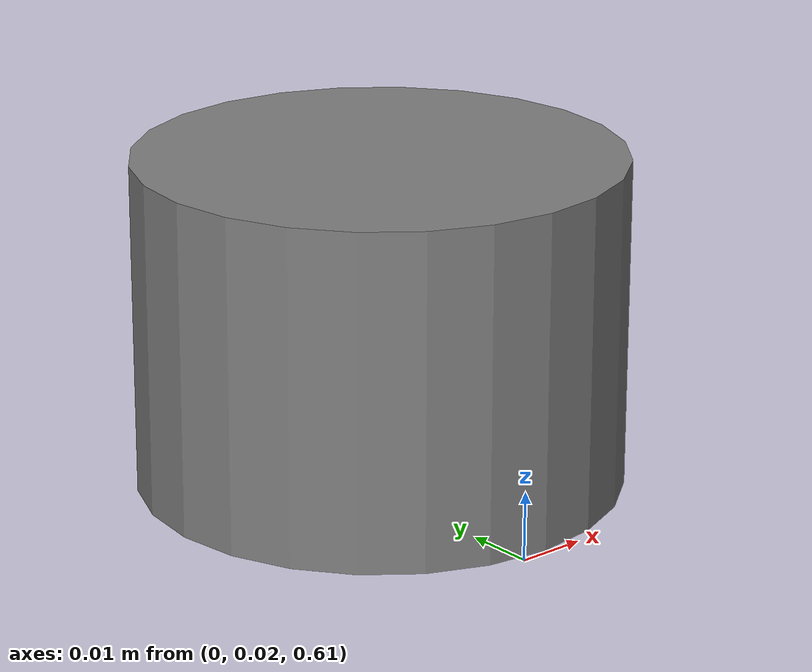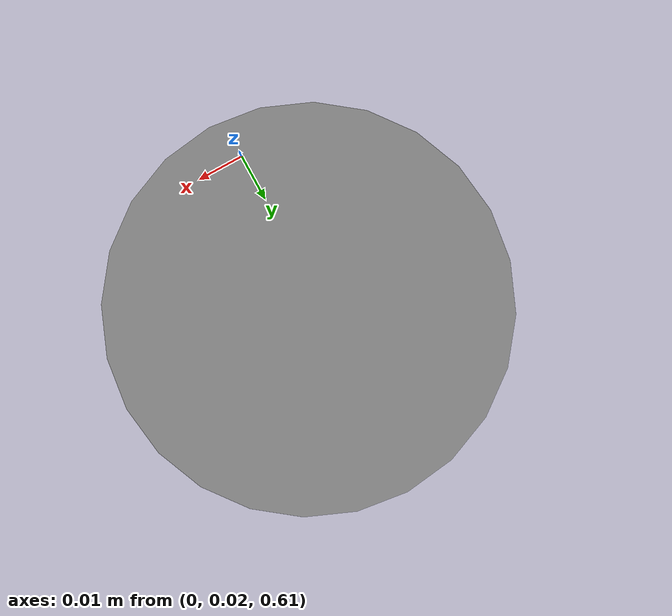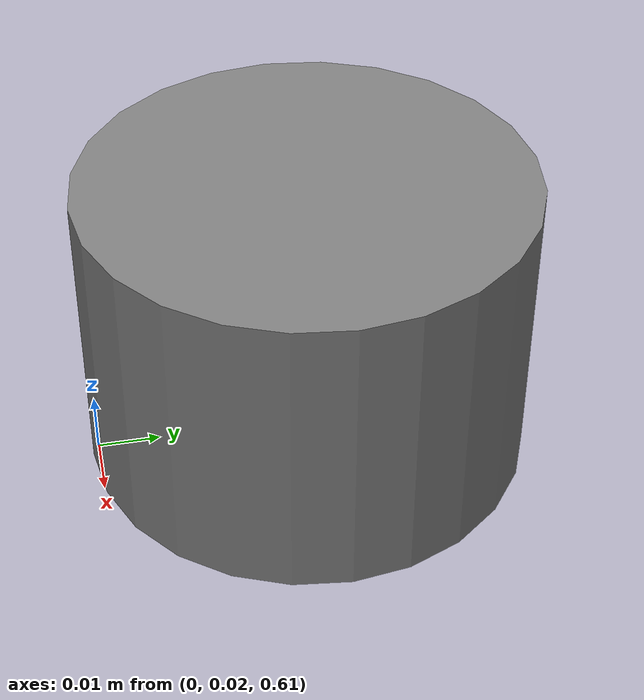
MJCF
<mujoco>
  <default>
    <default class="cylinder">
      <geom friction=".3 0.05" conaffinity="2" condim="3"/>
    </default>
  </default>

  <worldbody>
    <body name="cylinder" pos="0.003 0.054 0.635" quat="1 0 0 0" childclass="cylinder">
      <freejoint name="cylinder_freejoint"/>
      <geom name="cylinder" type="cylinder" size="0.035 0.024" contype="1" conaffinity="1" mass="0.05" group="2"/>
      <site name="cylinder_center" pos="0 0 0" group="4"/>
    </body>
  </worldbody>
</mujoco>
